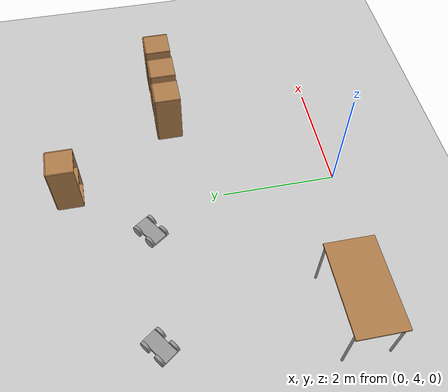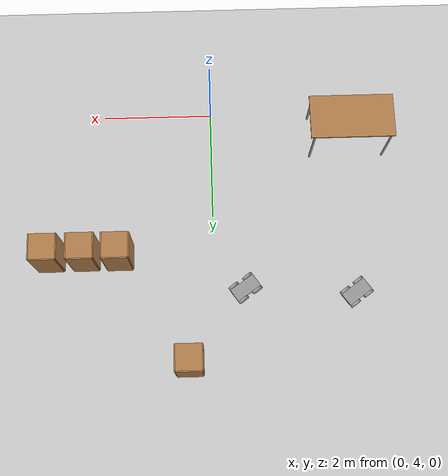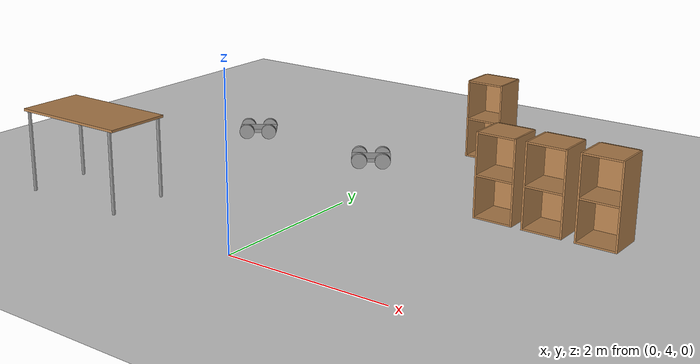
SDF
<sdf version="1.6">
 <world name="default">
  <model name="ground_plane">
   <static>1</static>
   <link name="link">
    <collision name="collision">
     <geometry><plane><normal>0 0 1</normal><size>100 100</size></plane></geometry>
     <surface>
      <contact><collide_bitmask>65535</collide_bitmask></contact>
      <friction><ode><mu>100</mu><mu2>50</mu2></ode></friction>
     </surface>
    </collision>
    <visual name="visual">
     <cast_shadows>0</cast_shadows>
     <geometry><plane><normal>0 0 1</normal><size>100 100</size></plane></geometry>
     <material>
      <script><uri>file://media/materials/scripts/gazebo.material</uri><name>Gazebo/Grey</name></script>
     </material>
    </visual>
   </link>
  </model>
  <model name="table">
   <static>1</static>
   <link name="link">
    <collision name="surface">
     <pose>0 0 1 0 -0 0</pose>
     <geometry><box><size>1.5 0.8 0.03</size></box></geometry>
     <surface><friction><ode><mu>0.6</mu><mu2>0.6</mu2></ode></friction></surface>
    </collision>
    <visual name="visual1">
     <pose>0 0 1 0 -0 0</pose>
     <geometry><box><size>1.5 0.8 0.03</size></box></geometry>
     <material>
      <script><uri>file://media/materials/scripts/gazebo.material</uri><name>Gazebo/Wood</name></script>
     </material>
    </visual>
    <collision name="front_left_leg">
     <pose>0.68 0.38 0.5 0 -0 0</pose>
     <geometry><cylinder><radius>0.02</radius><length>1</length></cylinder></geometry>
    </collision>
    <visual name="front_left_leg">
     <pose>0.68 0.38 0.5 0 -0 0</pose>
     <geometry><cylinder><radius>0.02</radius><length>1</length></cylinder></geometry>
     <material>
      <script><uri>file://media/materials/scripts/gazebo.material</uri><name>Gazebo/Grey</name></script>
     </material>
    </visual>
    <collision name="front_right_leg">
     <pose>0.68 -0.38 0.5 0 -0 0</pose>
     <geometry><cylinder><radius>0.02</radius><length>1</length></cylinder></geometry>
    </collision>
    <visual name="front_right_leg">
     <pose>0.68 -0.38 0.5 0 -0 0</pose>
     <geometry><cylinder><radius>0.02</radius><length>1</length></cylinder></geometry>
     <material>
      <script><uri>file://media/materials/scripts/gazebo.material</uri><name>Gazebo/Grey</name></script>
     </material>
    </visual>
    <collision name="back_right_leg">
     <pose>-0.68 -0.38 0.5 0 -0 0</pose>
     <geometry><cylinder><radius>0.02</radius><length>1</length></cylinder></geometry>
    </collision>
    <visual name="back_right_leg">
     <pose>-0.68 -0.38 0.5 0 -0 0</pose>
     <geometry><cylinder><radius>0.02</radius><length>1</length></cylinder></geometry>
     <material>
      <script><uri>file://media/materials/scripts/gazebo.material</uri><name>Gazebo/Grey</name></script>
     </material>
    </visual>
    <collision name="back_left_leg">
     <pose>-0.68 0.38 0.5 0 -0 0</pose>
     <geometry><cylinder><radius>0.02</radius><length>1</length></cylinder></geometry>
    </collision>
    <visual name="back_left_leg">
     <pose>-0.68 0.38 0.5 0 -0 0</pose>
     <geometry><cylinder><radius>0.02</radius><length>1</length></cylinder></geometry>
     <material>
      <script><uri>file://media/materials/scripts/gazebo.material</uri><name>Gazebo/Grey</name></script>
     </material>
    </visual>
   </link>
   <pose>-2.52101 4.48364 0 0 -0 0</pose>
  </model>
  <model name="cabinet">
   <static>1</static>
   <link name="cabinet_bottom_plate">
    <inertial>
     <pose>0 0 -1 0 -0 0</pose>
     <inertia><ixx>2.05</ixx><ixy>0</ixy><ixz>0</ixz><iyy>2.05</iyy><iyz>0</iyz><izz>2.05</izz></inertia>
     <mass>25</mass>
    </inertial>
    <collision name="cabinet_bottom_plate_geom">
     <pose>0 0 0.01 0 -0 0</pose>
     <geometry><box><size>0.45 0.45 0.02</size></box></geometry>
    </collision>
    <visual name="cabinet_bottom_plate_geom_visual">
     <pose>0 0 0.01 0 -0 0</pose>
     <geometry><box><size>0.45 0.45 0.02</size></box></geometry>
     <material>
      <script><uri>file://media/materials/scripts/gazebo.material</uri><name>Gazebo/Wood</name></script>
     </material>
    </visual>
    <collision name="cabinet_bottom_plate_geom_cabinet_back_plate">
     <pose>0.235 0 0.51 0 -0 0</pose>
     <geometry><box><size>0.02 0.45 1.02</size></box></geometry>
    </collision>
    <visual name="cabinet_bottom_plate_geom_cabinet_back_plate_visual">
     <pose>0.235 0 0.51 0 -0 0</pose>
     <geometry><box><size>0.02 0.45 1.02</size></box></geometry>
     <material>
      <script><uri>file://media/materials/scripts/gazebo.material</uri><name>Gazebo/Wood</name></script>
     </material>
    </visual>
    <collision name="cabinet_bottom_plate_geom_cabinet_left_plate">
     <pose>0 0.235 0.51 0 -0 0</pose>
     <geometry><box><size>0.45 0.02 1.02</size></box></geometry>
    </collision>
    <visual name="cabinet_bottom_plate_geom_cabinet_left_plate_visual">
     <pose>0 0.235 0.51 0 -0 0</pose>
     <geometry><box><size>0.45 0.02 1.02</size></box></geometry>
     <material>
      <script><uri>file://media/materials/scripts/gazebo.material</uri><name>Gazebo/Wood</name></script>
     </material>
    </visual>
    <collision name="cabinet_bottom_plate_geom_cabinet_middle_plate">
     <pose>0 0 0.51 0 -0 0</pose>
     <geometry><box><size>0.45 0.45 0.02</size></box></geometry>
    </collision>
    <visual name="cabinet_bottom_plate_geom_cabinet_middle_plate_visual">
     <pose>0 0 0.51 0 -0 0</pose>
     <geometry><box><size>0.45 0.45 0.02</size></box></geometry>
     <material>
      <script><uri>file://media/materials/scripts/gazebo.material</uri><name>Gazebo/Wood</name></script>
     </material>
    </visual>
    <collision name="cabinet_bottom_plate_geom_cabinet_right_plate">
     <pose>0 -0.235 0.51 0 -0 0</pose>
     <geometry><box><size>0.45 0.02 1.02</size></box></geometry>
    </collision>
    <visual name="cabinet_bottom_plate_geom_cabinet_right_plate_visual">
     <pose>0 -0.235 0.51 0 -0 0</pose>
     <geometry><box><size>0.45 0.02 1.02</size></box></geometry>
     <material>
      <script><uri>file://media/materials/scripts/gazebo.material</uri><name>Gazebo/Wood</name></script>
     </material>
    </visual>
    <collision name="cabinet_bottom_plate_geom_cabinet_top_plate">
     <pose>0 0 1.01 0 -0 0</pose>
     <geometry><box><size>0.45 0.45 0.02</size></box></geometry>
    </collision>
    <visual name="cabinet_bottom_plate_geom_cabinet_top_plate_visual">
     <pose>0 0 1.01 0 -0 0</pose>
     <geometry><box><size>0.45 0.45 0.02</size></box></geometry>
     <material>
      <script><uri>file://media/materials/scripts/gazebo.material</uri><name>Gazebo/Wood</name></script>
     </material>
    </visual>
   </link>
   <pose>2.94164 6.72302 0 0 -0 1.57</pose>
  </model>
  <model name="cabinet_clone">
   <static>1</static>
   <link name="cabinet_bottom_plate">
    <inertial>
     <pose>0 0 -1 0 -0 0</pose>
     <inertia><ixx>2.05</ixx><ixy>0</ixy><ixz>0</ixz><iyy>2.05</iyy><iyz>0</iyz><izz>2.05</izz></inertia>
     <mass>25</mass>
    </inertial>
    <collision name="cabinet_bottom_plate_geom">
     <pose>0 0 0.01 0 -0 0</pose>
     <geometry><box><size>0.45 0.45 0.02</size></box></geometry>
    </collision>
    <visual name="cabinet_bottom_plate_geom_visual">
     <pose>0 0 0.01 0 -0 0</pose>
     <geometry><box><size>0.45 0.45 0.02</size></box></geometry>
     <material>
      <script><uri>file://media/materials/scripts/gazebo.material</uri><name>Gazebo/Wood</name></script>
     </material>
    </visual>
    <collision name="cabinet_bottom_plate_geom_cabinet_back_plate">
     <pose>0.235 0 0.51 0 -0 0</pose>
     <geometry><box><size>0.02 0.45 1.02</size></box></geometry>
    </collision>
    <visual name="cabinet_bottom_plate_geom_cabinet_back_plate_visual">
     <pose>0.235 0 0.51 0 -0 0</pose>
     <geometry><box><size>0.02 0.45 1.02</size></box></geometry>
     <material>
      <script><uri>file://media/materials/scripts/gazebo.material</uri><name>Gazebo/Wood</name></script>
     </material>
    </visual>
    <collision name="cabinet_bottom_plate_geom_cabinet_left_plate">
     <pose>0 0.235 0.51 0 -0 0</pose>
     <geometry><box><size>0.45 0.02 1.02</size></box></geometry>
    </collision>
    <visual name="cabinet_bottom_plate_geom_cabinet_left_plate_visual">
     <pose>0 0.235 0.51 0 -0 0</pose>
     <geometry><box><size>0.45 0.02 1.02</size></box></geometry>
     <material>
      <script><uri>file://media/materials/scripts/gazebo.material</uri><name>Gazebo/Wood</name></script>
     </material>
    </visual>
    <collision name="cabinet_bottom_plate_geom_cabinet_middle_plate">
     <pose>0 0 0.51 0 -0 0</pose>
     <geometry><box><size>0.45 0.45 0.02</size></box></geometry>
    </collision>
    <visual name="cabinet_bottom_plate_geom_cabinet_middle_plate_visual">
     <pose>0 0 0.51 0 -0 0</pose>
     <geometry><box><size>0.45 0.45 0.02</size></box></geometry>
     <material>
      <script><uri>file://media/materials/scripts/gazebo.material</uri><name>Gazebo/Wood</name></script>
     </material>
    </visual>
    <collision name="cabinet_bottom_plate_geom_cabinet_right_plate">
     <pose>0 -0.235 0.51 0 -0 0</pose>
     <geometry><box><size>0.45 0.02 1.02</size></box></geometry>
    </collision>
    <visual name="cabinet_bottom_plate_geom_cabinet_right_plate_visual">
     <pose>0 -0.235 0.51 0 -0 0</pose>
     <geometry><box><size>0.45 0.02 1.02</size></box></geometry>
     <material>
      <script><uri>file://media/materials/scripts/gazebo.material</uri><name>Gazebo/Wood</name></script>
     </material>
    </visual>
    <collision name="cabinet_bottom_plate_geom_cabinet_top_plate">
     <pose>0 0 1.01 0 -0 0</pose>
     <geometry><box><size>0.45 0.45 0.02</size></box></geometry>
    </collision>
    <visual name="cabinet_bottom_plate_geom_cabinet_top_plate_visual">
     <pose>0 0 1.01 0 -0 0</pose>
     <geometry><box><size>0.45 0.45 0.02</size></box></geometry>
     <material>
      <script><uri>file://media/materials/scripts/gazebo.material</uri><name>Gazebo/Wood</name></script>
     </material>
    </visual>
   </link>
   <pose>2.30652 6.72096 0 0 -0 1.57</pose>
  </model>
  <model name="cabinet_clone_0">
   <static>1</static>
   <link name="cabinet_bottom_plate">
    <inertial>
     <pose>0 0 -1 0 -0 0</pose>
     <inertia><ixx>2.05</ixx><ixy>0</ixy><ixz>0</ixz><iyy>2.05</iyy><iyz>0</iyz><izz>2.05</izz></inertia>
     <mass>25</mass>
    </inertial>
    <collision name="cabinet_bottom_plate_geom">
     <pose>0 0 0.01 0 -0 0</pose>
     <geometry><box><size>0.45 0.45 0.02</size></box></geometry>
    </collision>
    <visual name="cabinet_bottom_plate_geom_visual">
     <pose>0 0 0.01 0 -0 0</pose>
     <geometry><box><size>0.45 0.45 0.02</size></box></geometry>
     <material>
      <script><uri>file://media/materials/scripts/gazebo.material</uri><name>Gazebo/Wood</name></script>
     </material>
    </visual>
    <collision name="cabinet_bottom_plate_geom_cabinet_back_plate">
     <pose>0.235 0 0.51 0 -0 0</pose>
     <geometry><box><size>0.02 0.45 1.02</size></box></geometry>
    </collision>
    <visual name="cabinet_bottom_plate_geom_cabinet_back_plate_visual">
     <pose>0.235 0 0.51 0 -0 0</pose>
     <geometry><box><size>0.02 0.45 1.02</size></box></geometry>
     <material>
      <script><uri>file://media/materials/scripts/gazebo.material</uri><name>Gazebo/Wood</name></script>
     </material>
    </visual>
    <collision name="cabinet_bottom_plate_geom_cabinet_left_plate">
     <pose>0 0.235 0.51 0 -0 0</pose>
     <geometry><box><size>0.45 0.02 1.02</size></box></geometry>
    </collision>
    <visual name="cabinet_bottom_plate_geom_cabinet_left_plate_visual">
     <pose>0 0.235 0.51 0 -0 0</pose>
     <geometry><box><size>0.45 0.02 1.02</size></box></geometry>
     <material>
      <script><uri>file://media/materials/scripts/gazebo.material</uri><name>Gazebo/Wood</name></script>
     </material>
    </visual>
    <collision name="cabinet_bottom_plate_geom_cabinet_middle_plate">
     <pose>0 0 0.51 0 -0 0</pose>
     <geometry><box><size>0.45 0.45 0.02</size></box></geometry>
    </collision>
    <visual name="cabinet_bottom_plate_geom_cabinet_middle_plate_visual">
     <pose>0 0 0.51 0 -0 0</pose>
     <geometry><box><size>0.45 0.45 0.02</size></box></geometry>
     <material>
      <script><uri>file://media/materials/scripts/gazebo.material</uri><name>Gazebo/Wood</name></script>
     </material>
    </visual>
    <collision name="cabinet_bottom_plate_geom_cabinet_right_plate">
     <pose>0 -0.235 0.51 0 -0 0</pose>
     <geometry><box><size>0.45 0.02 1.02</size></box></geometry>
    </collision>
    <visual name="cabinet_bottom_plate_geom_cabinet_right_plate_visual">
     <pose>0 -0.235 0.51 0 -0 0</pose>
     <geometry><box><size>0.45 0.02 1.02</size></box></geometry>
     <material>
      <script><uri>file://media/materials/scripts/gazebo.material</uri><name>Gazebo/Wood</name></script>
     </material>
    </visual>
    <collision name="cabinet_bottom_plate_geom_cabinet_top_plate">
     <pose>0 0 1.01 0 -0 0</pose>
     <geometry><box><size>0.45 0.45 0.02</size></box></geometry>
    </collision>
    <visual name="cabinet_bottom_plate_geom_cabinet_top_plate_visual">
     <pose>0 0 1.01 0 -0 0</pose>
     <geometry><box><size>0.45 0.45 0.02</size></box></geometry>
     <material>
      <script><uri>file://media/materials/scripts/gazebo.material</uri><name>Gazebo/Wood</name></script>
     </material>
    </visual>
   </link>
   <pose>1.70059 6.72405 0 0 -0 1.57</pose>
  </model>
  <model name="4_wheeled_platform_clone">
   <link name="link_2">
    <inertial>
     <mass>1</mass>
     <inertia>
      <ixx>0.166667</ixx>
      <ixy>0</ixy>
      <ixz>0</ixz>
      <iyy>0.166667</iyy>
      <iyz>0</iyz>
      <izz>0.166667</izz>
     </inertia>
    </inertial>
    <pose>0.211313 0.477903 0 0 -0 0</pose>
    <visual name="visual">
     <geometry><box><size>0.5 0.25 0.05</size></box></geometry>
     <material>
      <lighting>1</lighting>
      <script><uri>file://media/materials/scripts/gazebo.material</uri><name>Gazebo/Grey</name></script>
      <shader type="vertex"><normal_map>__default__</normal_map></shader>
      <ambient>0.3 0.3 0.3 1</ambient>
      <diffuse>0.7 0.7 0.7 1</diffuse>
      <specular>0.01 0.01 0.01 1</specular>
      <emissive>0 0 0 1</emissive>
     </material>
    </visual>
    <collision name="collision">
     <geometry><box><size>0.5 0.25 0.05</size></box></geometry>
     <surface>
      <friction>
       <ode><mu>1</mu><mu2>1</mu2><fdir1>0 0 0</fdir1><slip1>0</slip1><slip2>0</slip2></ode>
       <torsional>
        <coefficient>1</coefficient>
        <patch_radius>0</patch_radius>
        <surface_radius>0</surface_radius>
        <use_patch_radius>1</use_patch_radius>
        <ode><slip>0</slip></ode>
       </torsional>
      </friction>
      <bounce><restitution_coefficient>0</restitution_coefficient><threshold>1e+06</threshold></bounce>
      <contact>
       <collide_without_contact>0</collide_without_contact>
       <collide_without_contact_bitmask>1</collide_without_contact_bitmask>
       <collide_bitmask>1</collide_bitmask>
       <ode>
        <soft_cfm>0</soft_cfm>
        <soft_erp>0.2</soft_erp>
        <kp>1e+13</kp>
        <kd>1</kd>
        <max_vel>0.01</max_vel>
        <min_depth>0</min_depth>
       </ode>
       <bullet>
        <split_impulse>1</split_impulse>
        <split_impulse_penetration_threshold>-0.01</split_impulse_penetration_threshold>
        <soft_cfm>0</soft_cfm>
        <soft_erp>0.2</soft_erp>
        <kp>1e+13</kp>
        <kd>1</kd>
       </bullet>
      </contact>
     </surface>
    </collision>
   </link>
   <link name="link_3">
    <inertial>
     <mass>1</mass>
     <inertia><ixx>0.145833</ixx><ixy>0</ixy><ixz>0</ixz><iyy>0.145833</iyy><iyz>0</iyz><izz>0.125</izz></inertia>
    </inertial>
    <pose>0.061313 0.327903 0 1.5707 -0 0</pose>
    <visual name="visual">
     <geometry><cylinder><radius>0.1</radius><length>0.05</length></cylinder></geometry>
     <material>
      <lighting>1</lighting>
      <script><uri>file://media/materials/scripts/gazebo.material</uri><name>Gazebo/Grey</name></script>
      <shader type="vertex"><normal_map>__default__</normal_map></shader>
      <ambient>0.3 0.3 0.3 1</ambient>
      <diffuse>0.7 0.7 0.7 1</diffuse>
      <specular>0.01 0.01 0.01 1</specular>
      <emissive>0 0 0 1</emissive>
     </material>
    </visual>
    <collision name="collision">
     <geometry><cylinder><radius>0.1</radius><length>0.05</length></cylinder></geometry>
     <surface>
      <friction>
       <ode><mu>1</mu><mu2>1</mu2><fdir1>0 0 0</fdir1><slip1>0</slip1><slip2>0</slip2></ode>
       <torsional>
        <coefficient>1</coefficient>
        <patch_radius>0</patch_radius>
        <surface_radius>0</surface_radius>
        <use_patch_radius>1</use_patch_radius>
        <ode><slip>0</slip></ode>
       </torsional>
      </friction>
      <bounce><restitution_coefficient>0</restitution_coefficient><threshold>1e+06</threshold></bounce>
      <contact>
       <collide_without_contact>0</collide_without_contact>
       <collide_without_contact_bitmask>1</collide_without_contact_bitmask>
       <collide_bitmask>1</collide_bitmask>
       <ode>
        <soft_cfm>0</soft_cfm>
        <soft_erp>0.2</soft_erp>
        <kp>1e+13</kp>
        <kd>1</kd>
        <max_vel>0.01</max_vel>
        <min_depth>0</min_depth>
       </ode>
       <bullet>
        <split_impulse>1</split_impulse>
        <split_impulse_penetration_threshold>-0.01</split_impulse_penetration_threshold>
        <soft_cfm>0</soft_cfm>
        <soft_erp>0.2</soft_erp>
        <kp>1e+13</kp>
        <kd>1</kd>
       </bullet>
      </contact>
     </surface>
    </collision>
   </link>
   <link name="link_3_clone">
    <inertial>
     <mass>1</mass>
     <inertia><ixx>0.145833</ixx><ixy>0</ixy><ixz>0</ixz><iyy>0.145833</iyy><iyz>0</iyz><izz>0.125</izz></inertia>
    </inertial>
    <pose>0.061313 0.627903 0 1.5707 -0 0</pose>
    <visual name="visual">
     <geometry><cylinder><radius>0.1</radius><length>0.05</length></cylinder></geometry>
     <material>
      <lighting>1</lighting>
      <script><uri>file://media/materials/scripts/gazebo.material</uri><name>Gazebo/Grey</name></script>
      <shader type="vertex"><normal_map>__default__</normal_map></shader>
      <ambient>0.3 0.3 0.3 1</ambient>
      <diffuse>0.7 0.7 0.7 1</diffuse>
      <specular>0.01 0.01 0.01 1</specular>
      <emissive>0 0 0 1</emissive>
     </material>
    </visual>
    <collision name="collision">
     <geometry><cylinder><radius>0.1</radius><length>0.05</length></cylinder></geometry>
     <surface>
      <friction>
       <ode><mu>1</mu><mu2>1</mu2><fdir1>0 0 0</fdir1><slip1>0</slip1><slip2>0</slip2></ode>
       <torsional>
        <coefficient>1</coefficient>
        <patch_radius>0</patch_radius>
        <surface_radius>0</surface_radius>
        <use_patch_radius>1</use_patch_radius>
        <ode><slip>0</slip></ode>
       </torsional>
      </friction>
      <bounce><restitution_coefficient>0</restitution_coefficient><threshold>1e+06</threshold></bounce>
      <contact>
       <collide_without_contact>0</collide_without_contact>
       <collide_without_contact_bitmask>1</collide_without_contact_bitmask>
       <collide_bitmask>1</collide_bitmask>
       <ode>
        <soft_cfm>0</soft_cfm>
        <soft_erp>0.2</soft_erp>
        <kp>1e+13</kp>
        <kd>1</kd>
        <max_vel>0.01</max_vel>
        <min_depth>0</min_depth>
       </ode>
       <bullet>
        <split_impulse>1</split_impulse>
        <split_impulse_penetration_threshold>-0.01</split_impulse_penetration_threshold>
        <soft_cfm>0</soft_cfm>
        <soft_erp>0.2</soft_erp>
        <kp>1e+13</kp>
        <kd>1</kd>
       </bullet>
      </contact>
     </surface>
    </collision>
   </link>
   <link name="link_3_clone_0">
    <inertial>
     <mass>1</mass>
     <inertia><ixx>0.145833</ixx><ixy>0</ixy><ixz>0</ixz><iyy>0.145833</iyy><iyz>0</iyz><izz>0.125</izz></inertia>
    </inertial>
    <pose>0.361313 0.627903 0 1.5707 -0 0</pose>
    <visual name="visual">
     <geometry><cylinder><radius>0.1</radius><length>0.05</length></cylinder></geometry>
     <material>
      <lighting>1</lighting>
      <script><uri>file://media/materials/scripts/gazebo.material</uri><name>Gazebo/Grey</name></script>
      <shader type="vertex"><normal_map>__default__</normal_map></shader>
      <ambient>0.3 0.3 0.3 1</ambient>
      <diffuse>0.7 0.7 0.7 1</diffuse>
      <specular>0.01 0.01 0.01 1</specular>
      <emissive>0 0 0 1</emissive>
     </material>
    </visual>
    <collision name="collision">
     <geometry><cylinder><radius>0.1</radius><length>0.05</length></cylinder></geometry>
     <surface>
      <friction>
       <ode><mu>1</mu><mu2>1</mu2><fdir1>0 0 0</fdir1><slip1>0</slip1><slip2>0</slip2></ode>
       <torsional>
        <coefficient>1</coefficient>
        <patch_radius>0</patch_radius>
        <surface_radius>0</surface_radius>
        <use_patch_radius>1</use_patch_radius>
        <ode><slip>0</slip></ode>
       </torsional>
      </friction>
      <bounce><restitution_coefficient>0</restitution_coefficient><threshold>1e+06</threshold></bounce>
      <contact>
       <collide_without_contact>0</collide_without_contact>
       <collide_without_contact_bitmask>1</collide_without_contact_bitmask>
       <collide_bitmask>1</collide_bitmask>
       <ode>
        <soft_cfm>0</soft_cfm>
        <soft_erp>0.2</soft_erp>
        <kp>1e+13</kp>
        <kd>1</kd>
        <max_vel>0.01</max_vel>
        <min_depth>0</min_depth>
       </ode>
       <bullet>
        <split_impulse>1</split_impulse>
        <split_impulse_penetration_threshold>-0.01</split_impulse_penetration_threshold>
        <soft_cfm>0</soft_cfm>
        <soft_erp>0.2</soft_erp>
        <kp>1e+13</kp>
        <kd>1</kd>
       </bullet>
      </contact>
     </surface>
    </collision>
   </link>
   <link name="link_3_clone_1">
    <inertial>
     <mass>1</mass>
     <inertia><ixx>0.145833</ixx><ixy>0</ixy><ixz>0</ixz><iyy>0.145833</iyy><iyz>0</iyz><izz>0.125</izz></inertia>
    </inertial>
    <pose>0.361313 0.327903 0 1.5707 -0 0</pose>
    <visual name="visual">
     <geometry><cylinder><radius>0.1</radius><length>0.05</length></cylinder></geometry>
     <material>
      <lighting>1</lighting>
      <script><uri>file://media/materials/scripts/gazebo.material</uri><name>Gazebo/Grey</name></script>
      <shader type="vertex"><normal_map>__default__</normal_map></shader>
      <ambient>0.3 0.3 0.3 1</ambient>
      <diffuse>0.7 0.7 0.7 1</diffuse>
      <specular>0.01 0.01 0.01 1</specular>
      <emissive>0 0 0 1</emissive>
     </material>
    </visual>
    <collision name="collision">
     <geometry><cylinder><radius>0.1</radius><length>0.05</length></cylinder></geometry>
     <surface>
      <friction>
       <ode><mu>1</mu><mu2>1</mu2><fdir1>0 0 0</fdir1><slip1>0</slip1><slip2>0</slip2></ode>
       <torsional>
        <coefficient>1</coefficient>
        <patch_radius>0</patch_radius>
        <surface_radius>0</surface_radius>
        <use_patch_radius>1</use_patch_radius>
        <ode><slip>0</slip></ode>
       </torsional>
      </friction>
      <bounce><restitution_coefficient>0</restitution_coefficient><threshold>1e+06</threshold></bounce>
      <contact>
       <collide_without_contact>0</collide_without_contact>
       <collide_without_contact_bitmask>1</collide_without_contact_bitmask>
       <collide_bitmask>1</collide_bitmask>
       <ode>
        <soft_cfm>0</soft_cfm>
        <soft_erp>0.2</soft_erp>
        <kp>1e+13</kp>
        <kd>1</kd>
        <max_vel>0.01</max_vel>
        <min_depth>0</min_depth>
       </ode>
       <bullet>
        <split_impulse>1</split_impulse>
        <split_impulse_penetration_threshold>-0.01</split_impulse_penetration_threshold>
        <soft_cfm>0</soft_cfm>
        <soft_erp>0.2</soft_erp>
        <kp>1e+13</kp>
        <kd>1</kd>
       </bullet>
      </contact>
     </surface>
    </collision>
   </link>
   <joint name="link_2_JOINT_6" type="revolute">
    <parent>link_2</parent>
    <child>link_3</child>
    <axis>
     <xyz>0 0 1</xyz>
     <use_parent_model_frame>0</use_parent_model_frame>
     <limit>
      <lower>-1.79769e+308</lower>
      <upper>1.79769e+308</upper>
      <effort>-1</effort>
      <velocity>-1</velocity>
     </limit>
     <dynamics>
      <spring_reference>0</spring_reference>
      <spring_stiffness>0</spring_stiffness>
      <damping>0</damping>
     </dynamics>
    </axis>
    <physics>
     <ode><limit><cfm>0</cfm><erp>0.2</erp></limit><suspension><cfm>0</cfm><erp>0.2</erp></suspension></ode>
    </physics>
   </joint>
   <joint name="link_2_JOINT_7" type="revolute">
    <parent>link_2</parent>
    <child>link_3_clone</child>
    <axis>
     <xyz>0 0 1</xyz>
     <use_parent_model_frame>0</use_parent_model_frame>
     <limit>
      <lower>-1.79769e+308</lower>
      <upper>1.79769e+308</upper>
      <effort>-1</effort>
      <velocity>-1</velocity>
     </limit>
     <dynamics>
      <spring_reference>0</spring_reference>
      <spring_stiffness>0</spring_stiffness>
      <damping>0</damping>
     </dynamics>
    </axis>
    <physics>
     <ode><limit><cfm>0</cfm><erp>0.2</erp></limit><suspension><cfm>0</cfm><erp>0.2</erp></suspension></ode>
    </physics>
   </joint>
   <joint name="link_2_JOINT_8" type="revolute">
    <parent>link_2</parent>
    <child>link_3_clone_0</child>
    <axis>
     <xyz>1 0 0</xyz>
     <use_parent_model_frame>0</use_parent_model_frame>
     <limit>
      <lower>-1.79769e+308</lower>
      <upper>1.79769e+308</upper>
      <effort>-1</effort>
      <velocity>-1</velocity>
     </limit>
     <dynamics>
      <spring_reference>0</spring_reference>
      <spring_stiffness>0</spring_stiffness>
      <damping>0</damping>
     </dynamics>
    </axis>
    <physics>
     <ode><limit><cfm>0</cfm><erp>0.2</erp></limit><suspension><cfm>0</cfm><erp>0.2</erp></suspension></ode>
    </physics>
   </joint>
   <joint name="link_2_JOINT_9" type="revolute">
    <parent>link_2</parent>
    <child>link_3_clone_1</child>
    <axis>
     <xyz>1 0 0</xyz>
     <use_parent_model_frame>0</use_parent_model_frame>
     <limit>
      <lower>-1.79769e+308</lower>
      <upper>1.79769e+308</upper>
      <effort>-1</effort>
      <velocity>-1</velocity>
     </limit>
     <dynamics>
      <spring_reference>0</spring_reference>
      <spring_stiffness>0</spring_stiffness>
      <damping>0</damping>
     </dynamics>
    </axis>
    <physics>
     <ode><limit><cfm>0</cfm><erp>0.2</erp></limit><suspension><cfm>0</cfm><erp>0.2</erp></suspension></ode>
    </physics>
   </joint>
   <static>0</static>
   <pose>-0.451297 6.85301 0.099999 0 8e-06 0.602018</pose>
  </model>
  <model name="4_wheeled_platform_clone_clone_0">
   <link name="link_2">
    <inertial>
     <mass>1</mass>
     <inertia>
      <ixx>0.166667</ixx>
      <ixy>0</ixy>
      <ixz>0</ixz>
      <iyy>0.166667</iyy>
      <iyz>0</iyz>
      <izz>0.166667</izz>
     </inertia>
    </inertial>
    <pose>0.211313 0.477903 0 0 -0 0</pose>
    <visual name="visual">
     <geometry><box><size>0.5 0.25 0.05</size></box></geometry>
     <material>
      <lighting>1</lighting>
      <script><uri>file://media/materials/scripts/gazebo.material</uri><name>Gazebo/Grey</name></script>
      <shader type="vertex"><normal_map>__default__</normal_map></shader>
      <ambient>0.3 0.3 0.3 1</ambient>
      <diffuse>0.7 0.7 0.7 1</diffuse>
      <specular>0.01 0.01 0.01 1</specular>
      <emissive>0 0 0 1</emissive>
     </material>
    </visual>
    <collision name="collision">
     <geometry><box><size>0.5 0.25 0.05</size></box></geometry>
     <surface>
      <friction>
       <ode><mu>1</mu><mu2>1</mu2><fdir1>0 0 0</fdir1><slip1>0</slip1><slip2>0</slip2></ode>
       <torsional>
        <coefficient>1</coefficient>
        <patch_radius>0</patch_radius>
        <surface_radius>0</surface_radius>
        <use_patch_radius>1</use_patch_radius>
        <ode><slip>0</slip></ode>
       </torsional>
      </friction>
      <bounce><restitution_coefficient>0</restitution_coefficient><threshold>1e+06</threshold></bounce>
      <contact>
       <collide_without_contact>0</collide_without_contact>
       <collide_without_contact_bitmask>1</collide_without_contact_bitmask>
       <collide_bitmask>1</collide_bitmask>
       <ode>
        <soft_cfm>0</soft_cfm>
        <soft_erp>0.2</soft_erp>
        <kp>1e+13</kp>
        <kd>1</kd>
        <max_vel>0.01</max_vel>
        <min_depth>0</min_depth>
       </ode>
       <bullet>
        <split_impulse>1</split_impulse>
        <split_impulse_penetration_threshold>-0.01</split_impulse_penetration_threshold>
        <soft_cfm>0</soft_cfm>
        <soft_erp>0.2</soft_erp>
        <kp>1e+13</kp>
        <kd>1</kd>
       </bullet>
      </contact>
     </surface>
    </collision>
   </link>
   <link name="link_3">
    <inertial>
     <mass>1</mass>
     <inertia><ixx>0.145833</ixx><ixy>0</ixy><ixz>0</ixz><iyy>0.145833</iyy><iyz>0</iyz><izz>0.125</izz></inertia>
    </inertial>
    <pose>0.061313 0.327903 0 1.5707 -0 0</pose>
    <visual name="visual">
     <geometry><cylinder><radius>0.1</radius><length>0.05</length></cylinder></geometry>
     <material>
      <lighting>1</lighting>
      <script><uri>file://media/materials/scripts/gazebo.material</uri><name>Gazebo/Grey</name></script>
      <shader type="vertex"><normal_map>__default__</normal_map></shader>
      <ambient>0.3 0.3 0.3 1</ambient>
      <diffuse>0.7 0.7 0.7 1</diffuse>
      <specular>0.01 0.01 0.01 1</specular>
      <emissive>0 0 0 1</emissive>
     </material>
    </visual>
    <collision name="collision">
     <geometry><cylinder><radius>0.1</radius><length>0.05</length></cylinder></geometry>
     <surface>
      <friction>
       <ode><mu>1</mu><mu2>1</mu2><fdir1>0 0 0</fdir1><slip1>0</slip1><slip2>0</slip2></ode>
       <torsional>
        <coefficient>1</coefficient>
        <patch_radius>0</patch_radius>
        <surface_radius>0</surface_radius>
        <use_patch_radius>1</use_patch_radius>
        <ode><slip>0</slip></ode>
       </torsional>
      </friction>
      <bounce><restitution_coefficient>0</restitution_coefficient><threshold>1e+06</threshold></bounce>
      <contact>
       <collide_without_contact>0</collide_without_contact>
       <collide_without_contact_bitmask>1</collide_without_contact_bitmask>
       <collide_bitmask>1</collide_bitmask>
       <ode>
        <soft_cfm>0</soft_cfm>
        <soft_erp>0.2</soft_erp>
        <kp>1e+13</kp>
        <kd>1</kd>
        <max_vel>0.01</max_vel>
        <min_depth>0</min_depth>
       </ode>
       <bullet>
        <split_impulse>1</split_impulse>
        <split_impulse_penetration_threshold>-0.01</split_impulse_penetration_threshold>
        <soft_cfm>0</soft_cfm>
        <soft_erp>0.2</soft_erp>
        <kp>1e+13</kp>
        <kd>1</kd>
       </bullet>
      </contact>
     </surface>
    </collision>
   </link>
   <link name="link_3_clone">
    <inertial>
     <mass>1</mass>
     <inertia><ixx>0.145833</ixx><ixy>0</ixy><ixz>0</ixz><iyy>0.145833</iyy><iyz>0</iyz><izz>0.125</izz></inertia>
    </inertial>
    <pose>0.061313 0.627903 0 1.5707 -0 0</pose>
    <visual name="visual">
     <geometry><cylinder><radius>0.1</radius><length>0.05</length></cylinder></geometry>
     <material>
      <lighting>1</lighting>
      <script><uri>file://media/materials/scripts/gazebo.material</uri><name>Gazebo/Grey</name></script>
      <shader type="vertex"><normal_map>__default__</normal_map></shader>
      <ambient>0.3 0.3 0.3 1</ambient>
      <diffuse>0.7 0.7 0.7 1</diffuse>
      <specular>0.01 0.01 0.01 1</specular>
      <emissive>0 0 0 1</emissive>
     </material>
    </visual>
    <collision name="collision">
     <geometry><cylinder><radius>0.1</radius><length>0.05</length></cylinder></geometry>
     <surface>
      <friction>
       <ode><mu>1</mu><mu2>1</mu2><fdir1>0 0 0</fdir1><slip1>0</slip1><slip2>0</slip2></ode>
       <torsional>
        <coefficient>1</coefficient>
        <patch_radius>0</patch_radius>
        <surface_radius>0</surface_radius>
        <use_patch_radius>1</use_patch_radius>
        <ode><slip>0</slip></ode>
       </torsional>
      </friction>
      <bounce><restitution_coefficient>0</restitution_coefficient><threshold>1e+06</threshold></bounce>
      <contact>
       <collide_without_contact>0</collide_without_contact>
       <collide_without_contact_bitmask>1</collide_without_contact_bitmask>
       <collide_bitmask>1</collide_bitmask>
       <ode>
        <soft_cfm>0</soft_cfm>
        <soft_erp>0.2</soft_erp>
        <kp>1e+13</kp>
        <kd>1</kd>
        <max_vel>0.01</max_vel>
        <min_depth>0</min_depth>
       </ode>
       <bullet>
        <split_impulse>1</split_impulse>
        <split_impulse_penetration_threshold>-0.01</split_impulse_penetration_threshold>
        <soft_cfm>0</soft_cfm>
        <soft_erp>0.2</soft_erp>
        <kp>1e+13</kp>
        <kd>1</kd>
       </bullet>
      </contact>
     </surface>
    </collision>
   </link>
   <link name="link_3_clone_0">
    <inertial>
     <mass>1</mass>
     <inertia><ixx>0.145833</ixx><ixy>0</ixy><ixz>0</ixz><iyy>0.145833</iyy><iyz>0</iyz><izz>0.125</izz></inertia>
    </inertial>
    <pose>0.361313 0.627903 0 1.5707 -0 0</pose>
    <visual name="visual">
     <geometry><cylinder><radius>0.1</radius><length>0.05</length></cylinder></geometry>
     <material>
      <lighting>1</lighting>
      <script><uri>file://media/materials/scripts/gazebo.material</uri><name>Gazebo/Grey</name></script>
      <shader type="vertex"><normal_map>__default__</normal_map></shader>
      <ambient>0.3 0.3 0.3 1</ambient>
      <diffuse>0.7 0.7 0.7 1</diffuse>
      <specular>0.01 0.01 0.01 1</specular>
      <emissive>0 0 0 1</emissive>
     </material>
    </visual>
    <collision name="collision">
     <geometry><cylinder><radius>0.1</radius><length>0.05</length></cylinder></geometry>
     <surface>
      <friction>
       <ode><mu>1</mu><mu2>1</mu2><fdir1>0 0 0</fdir1><slip1>0</slip1><slip2>0</slip2></ode>
       <torsional>
        <coefficient>1</coefficient>
        <patch_radius>0</patch_radius>
        <surface_radius>0</surface_radius>
        <use_patch_radius>1</use_patch_radius>
        <ode><slip>0</slip></ode>
       </torsional>
      </friction>
      <bounce><restitution_coefficient>0</restitution_coefficient><threshold>1e+06</threshold></bounce>
      <contact>
       <collide_without_contact>0</collide_without_contact>
       <collide_without_contact_bitmask>1</collide_without_contact_bitmask>
       <collide_bitmask>1</collide_bitmask>
       <ode>
        <soft_cfm>0</soft_cfm>
        <soft_erp>0.2</soft_erp>
        <kp>1e+13</kp>
        <kd>1</kd>
        <max_vel>0.01</max_vel>
        <min_depth>0</min_depth>
       </ode>
       <bullet>
        <split_impulse>1</split_impulse>
        <split_impulse_penetration_threshold>-0.01</split_impulse_penetration_threshold>
        <soft_cfm>0</soft_cfm>
        <soft_erp>0.2</soft_erp>
        <kp>1e+13</kp>
        <kd>1</kd>
       </bullet>
      </contact>
     </surface>
    </collision>
   </link>
   <link name="link_3_clone_1">
    <inertial>
     <mass>1</mass>
     <inertia><ixx>0.145833</ixx><ixy>0</ixy><ixz>0</ixz><iyy>0.145833</iyy><iyz>0</iyz><izz>0.125</izz></inertia>
    </inertial>
    <pose>0.361313 0.327903 0 1.5707 -0 0</pose>
    <visual name="visual">
     <geometry><cylinder><radius>0.1</radius><length>0.05</length></cylinder></geometry>
     <material>
      <lighting>1</lighting>
      <script><uri>file://media/materials/scripts/gazebo.material</uri><name>Gazebo/Grey</name></script>
      <shader type="vertex"><normal_map>__default__</normal_map></shader>
      <ambient>0.3 0.3 0.3 1</ambient>
      <diffuse>0.7 0.7 0.7 1</diffuse>
      <specular>0.01 0.01 0.01 1</specular>
      <emissive>0 0 0 1</emissive>
     </material>
    </visual>
    <collision name="collision">
     <geometry><cylinder><radius>0.1</radius><length>0.05</length></cylinder></geometry>
     <surface>
      <friction>
       <ode><mu>1</mu><mu2>1</mu2><fdir1>0 0 0</fdir1><slip1>0</slip1><slip2>0</slip2></ode>
       <torsional>
        <coefficient>1</coefficient>
        <patch_radius>0</patch_radius>
        <surface_radius>0</surface_radius>
        <use_patch_radius>1</use_patch_radius>
        <ode><slip>0</slip></ode>
       </torsional>
      </friction>
      <bounce><restitution_coefficient>0</restitution_coefficient><threshold>1e+06</threshold></bounce>
      <contact>
       <collide_without_contact>0</collide_without_contact>
       <collide_without_contact_bitmask>1</collide_without_contact_bitmask>
       <collide_bitmask>1</collide_bitmask>
       <ode>
        <soft_cfm>0</soft_cfm>
        <soft_erp>0.2</soft_erp>
        <kp>1e+13</kp>
        <kd>1</kd>
        <max_vel>0.01</max_vel>
        <min_depth>0</min_depth>
       </ode>
       <bullet>
        <split_impulse>1</split_impulse>
        <split_impulse_penetration_threshold>-0.01</split_impulse_penetration_threshold>
        <soft_cfm>0</soft_cfm>
        <soft_erp>0.2</soft_erp>
        <kp>1e+13</kp>
        <kd>1</kd>
       </bullet>
      </contact>
     </surface>
    </collision>
   </link>
   <joint name="link_2_JOINT_6" type="revolute">
    <parent>link_2</parent>
    <child>link_3</child>
    <axis>
     <xyz>0 0 1</xyz>
     <use_parent_model_frame>0</use_parent_model_frame>
     <limit>
      <lower>-1.79769e+308</lower>
      <upper>1.79769e+308</upper>
      <effort>-1</effort>
      <velocity>-1</velocity>
     </limit>
     <dynamics>
      <spring_reference>0</spring_reference>
      <spring_stiffness>0</spring_stiffness>
      <damping>0</damping>
     </dynamics>
    </axis>
    <physics>
     <ode><limit><cfm>0</cfm><erp>0.2</erp></limit><suspension><cfm>0</cfm><erp>0.2</erp></suspension></ode>
    </physics>
   </joint>
   <joint name="link_2_JOINT_7" type="revolute">
    <parent>link_2</parent>
    <child>link_3_clone</child>
    <axis>
     <xyz>0 0 1</xyz>
     <use_parent_model_frame>0</use_parent_model_frame>
     <limit>
      <lower>-1.79769e+308</lower>
      <upper>1.79769e+308</upper>
      <effort>-1</effort>
      <velocity>-1</velocity>
     </limit>
     <dynamics>
      <spring_reference>0</spring_reference>
      <spring_stiffness>0</spring_stiffness>
      <damping>0</damping>
     </dynamics>
    </axis>
    <physics>
     <ode><limit><cfm>0</cfm><erp>0.2</erp></limit><suspension><cfm>0</cfm><erp>0.2</erp></suspension></ode>
    </physics>
   </joint>
   <joint name="link_2_JOINT_8" type="revolute">
    <parent>link_2</parent>
    <child>link_3_clone_0</child>
    <axis>
     <xyz>1 0 0</xyz>
     <use_parent_model_frame>0</use_parent_model_frame>
     <limit>
      <lower>-1.79769e+308</lower>
      <upper>1.79769e+308</upper>
      <effort>-1</effort>
      <velocity>-1</velocity>
     </limit>
     <dynamics>
      <spring_reference>0</spring_reference>
      <spring_stiffness>0</spring_stiffness>
      <damping>0</damping>
     </dynamics>
    </axis>
    <physics>
     <ode><limit><cfm>0</cfm><erp>0.2</erp></limit><suspension><cfm>0</cfm><erp>0.2</erp></suspension></ode>
    </physics>
   </joint>
   <joint name="link_2_JOINT_9" type="revolute">
    <parent>link_2</parent>
    <child>link_3_clone_1</child>
    <axis>
     <xyz>1 0 0</xyz>
     <use_parent_model_frame>0</use_parent_model_frame>
     <limit>
      <lower>-1.79769e+308</lower>
      <upper>1.79769e+308</upper>
      <effort>-1</effort>
      <velocity>-1</velocity>
     </limit>
     <dynamics>
      <spring_reference>0</spring_reference>
      <spring_stiffness>0</spring_stiffness>
      <damping>0</damping>
     </dynamics>
    </axis>
    <physics>
     <ode><limit><cfm>0</cfm><erp>0.2</erp></limit><suspension><cfm>0</cfm><erp>0.2</erp></suspension></ode>
    </physics>
   </joint>
   <static>0</static>
   <pose>-2.42897 6.97726 0.100006 -6e-06 2e-05 0.620911</pose>
  </model>
  <model name="cabinet_clone_2">
   <static>1</static>
   <link name="cabinet_bottom_plate">
    <inertial>
     <pose>0 0 -1 0 -0 0</pose>
     <inertia><ixx>2.05</ixx><ixy>0</ixy><ixz>0</ixz><iyy>2.05</iyy><iyz>0</iyz><izz>2.05</izz></inertia>
     <mass>25</mass>
    </inertial>
    <collision name="cabinet_bottom_plate_geom">
     <pose>0 0 0.01 0 -0 0</pose>
     <geometry><box><size>0.45 0.45 0.02</size></box></geometry>
    </collision>
    <visual name="cabinet_bottom_plate_geom_visual">
     <pose>0 0 0.01 0 -0 0</pose>
     <geometry><box><size>0.45 0.45 0.02</size></box></geometry>
     <material>
      <script><uri>file://media/materials/scripts/gazebo.material</uri><name>Gazebo/Wood</name></script>
     </material>
    </visual>
    <collision name="cabinet_bottom_plate_geom_cabinet_back_plate">
     <pose>0.235 0 0.51 0 -0 0</pose>
     <geometry><box><size>0.02 0.45 1.02</size></box></geometry>
    </collision>
    <visual name="cabinet_bottom_plate_geom_cabinet_back_plate_visual">
     <pose>0.235 0 0.51 0 -0 0</pose>
     <geometry><box><size>0.02 0.45 1.02</size></box></geometry>
     <material>
      <script><uri>file://media/materials/scripts/gazebo.material</uri><name>Gazebo/Wood</name></script>
     </material>
    </visual>
    <collision name="cabinet_bottom_plate_geom_cabinet_left_plate">
     <pose>0 0.235 0.51 0 -0 0</pose>
     <geometry><box><size>0.45 0.02 1.02</size></box></geometry>
    </collision>
    <visual name="cabinet_bottom_plate_geom_cabinet_left_plate_visual">
     <pose>0 0.235 0.51 0 -0 0</pose>
     <geometry><box><size>0.45 0.02 1.02</size></box></geometry>
     <material>
      <script><uri>file://media/materials/scripts/gazebo.material</uri><name>Gazebo/Wood</name></script>
     </material>
    </visual>
    <collision name="cabinet_bottom_plate_geom_cabinet_middle_plate">
     <pose>0 0 0.51 0 -0 0</pose>
     <geometry><box><size>0.45 0.45 0.02</size></box></geometry>
    </collision>
    <visual name="cabinet_bottom_plate_geom_cabinet_middle_plate_visual">
     <pose>0 0 0.51 0 -0 0</pose>
     <geometry><box><size>0.45 0.45 0.02</size></box></geometry>
     <material>
      <script><uri>file://media/materials/scripts/gazebo.material</uri><name>Gazebo/Wood</name></script>
     </material>
    </visual>
    <collision name="cabinet_bottom_plate_geom_cabinet_right_plate">
     <pose>0 -0.235 0.51 0 -0 0</pose>
     <geometry><box><size>0.45 0.02 1.02</size></box></geometry>
    </collision>
    <visual name="cabinet_bottom_plate_geom_cabinet_right_plate_visual">
     <pose>0 -0.235 0.51 0 -0 0</pose>
     <geometry><box><size>0.45 0.02 1.02</size></box></geometry>
     <material>
      <script><uri>file://media/materials/scripts/gazebo.material</uri><name>Gazebo/Wood</name></script>
     </material>
    </visual>
    <collision name="cabinet_bottom_plate_geom_cabinet_top_plate">
     <pose>0 0 1.01 0 -0 0</pose>
     <geometry><box><size>0.45 0.45 0.02</size></box></geometry>
    </collision>
    <visual name="cabinet_bottom_plate_geom_cabinet_top_plate_visual">
     <pose>0 0 1.01 0 -0 0</pose>
     <geometry><box><size>0.45 0.45 0.02</size></box></geometry>
     <material>
      <script><uri>file://media/materials/scripts/gazebo.material</uri><name>Gazebo/Wood</name></script>
     </material>
    </visual>
   </link>
   <pose>0.469235 8.66106 0 0 -0 1.57</pose>
  </model>
 </world>
</sdf>
